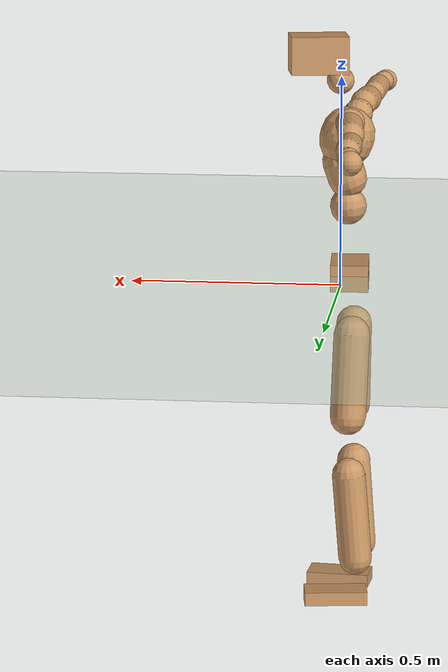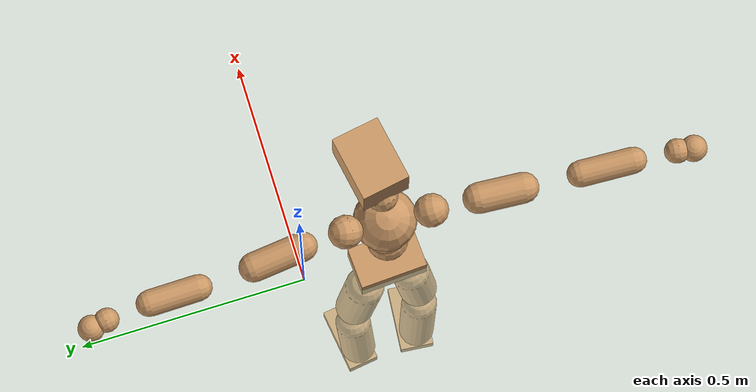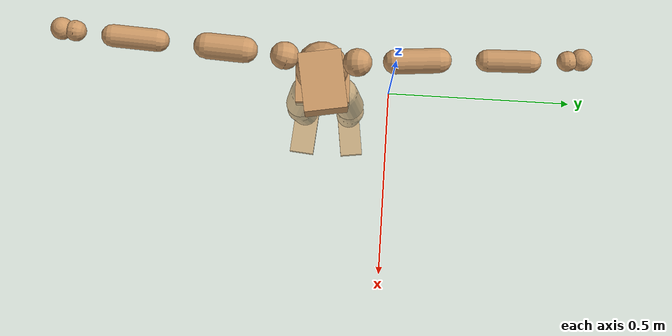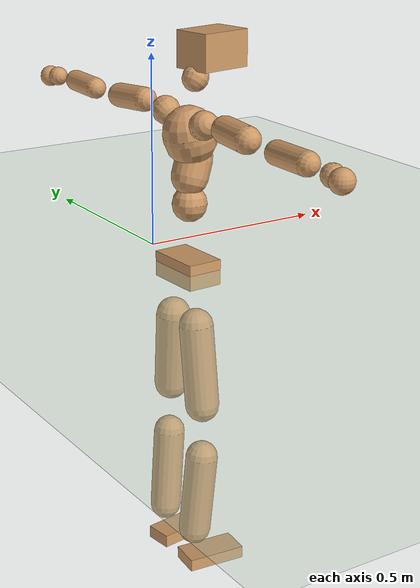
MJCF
<mujoco model="humanoid">
  <compiler coordinate="local" angle="radian"/>
  <default>
    <joint damping="0.0" armature="0.01" stiffness="0.0" limited="true"/>
    <geom conaffinity="1" condim="3" contype="7" margin="0.001" rgba="0.8 0.6 .4 1"/>
  </default>
  <asset>
    <texture type="skybox" builtin="gradient" rgb1=".4 .5 .6" rgb2="0 0 0" width="100" height="100"/>
    <texture builtin="flat" height="1278" mark="cross" markrgb="1 1 1" name="texgeom" random="0.01" rgb1="0.8 0.6 0.4" rgb2="0.8 0.6 0.4" type="cube" width="127"/>
    <texture builtin="checker" height="100" name="texplane" rgb1="0 0 0" rgb2="0.8 0.8 0.8" type="2d" width="100"/>
    <material name="MatPlane" reflectance="0.5" shininess="1" specular="1" texrepeat="60 60" texture="texplane"/>
    <material name="geom" texture="texgeom" texuniform="true"/>
  </asset>
  <worldbody>
    <light cutoff="100" diffuse="1 1 1" dir="-0 0 -1.3" directional="true" exponent="1" pos="0 0 1.3" specular=".1 .1 .1"/>
    <geom conaffinity="1" condim="3" name="floor" pos="0 0 0" rgba="0.8 0.9 0.8 1" size="100 100 .2" type="plane" material="MatPlane"/>
    <body name="Pelvis" pos="-0.0028 -0.1843 0.003">
      <freejoint name="Pelvis"/>
      <geom type="box" contype="1" conaffinity="1" density="5359.374919" pos="-0.0062 -0.0003 -0.0108" size="0.0461 0.0747 0.0325" quat="0.9997 0.0000 0.0000 0.0257" name="Pelvis"/>
      <body name="L_Hip" pos="-0.0182 0.0455 -0.0774">
        <joint name="L_Hip_x" type="hinge" pos="0 0 0" axis="1 0 0" stiffness="1600" damping="160" armature="0.02" range="-180.0000 180.0000"/>
        <joint name="L_Hip_y" type="hinge" pos="0 0 0" axis="0 1 0" stiffness="1600" damping="160" armature="0.02" range="-180.0000 180.0000"/>
        <joint name="L_Hip_z" type="hinge" pos="0 0 0" axis="0 0 1" stiffness="1600" damping="160" armature="0.02" range="-180.0000 180.0000"/>
        <geom type="capsule" contype="1" conaffinity="1" density="2040.816327" size="0.0439" fromto="0.0022 0.0081 -0.0734 0.0085 0.0305 -0.2768" name="L_Hip"/>
        <body name="L_Knee" pos="0.0107 0.0386 -0.3502">
          <joint name="L_Knee_x" type="hinge" pos="0 0 0" axis="1 0 0" stiffness="1600" damping="160" armature="0.02" range="-180.0000 180.0000"/>
          <joint name="L_Knee_y" type="hinge" pos="0 0 0" axis="0 1 0" stiffness="1600" damping="160" armature="0.02" range="-180.0000 180.0000"/>
          <joint name="L_Knee_z" type="hinge" pos="0 0 0" axis="0 0 1" stiffness="1600" damping="160" armature="0.02" range="-180.0000 180.0000"/>
          <geom type="capsule" contype="1" conaffinity="1" density="1234.567901" size="0.0408" fromto="-0.0056 -0.0022 -0.0705 -0.0225 -0.0089 -0.2852" name="L_Knee"/>
          <body name="L_Ankle" pos="-0.0281 -0.0111 -0.3558">
            <joint name="L_Ankle_x" type="hinge" pos="0 0 0" axis="1 0 0" stiffness="1600" damping="160" armature="0.02" range="-180.0000 180.0000"/>
            <joint name="L_Ankle_y" type="hinge" pos="0 0 0" axis="0 1 0" stiffness="1600" damping="160" armature="0.02" range="-180.0000 180.0000"/>
            <joint name="L_Ankle_z" type="hinge" pos="0 0 0" axis="0 0 1" stiffness="1600" damping="160" armature="0.02" range="-180.0000 180.0000"/>
            <geom type="box" contype="1" conaffinity="1" density="1000.000055" pos="0.0537 0.0075 -0.0244" size="0.0769 0.0363 0.0169" quat="0.9976 0.0000 0.0000 0.0690" name="L_Ankle"/>
            <body name="L_Toe" pos="0.1073 0.0149 -0.0489">
              <joint name="L_Toe_x" type="hinge" pos="0 0 0" axis="1 0 0" stiffness="1000" damping="100" armature="0.02" range="-180.0000 180.0000"/>
              <joint name="L_Toe_y" type="hinge" pos="0 0 0" axis="0 1 0" stiffness="1000" damping="100" armature="0.02" range="-180.0000 180.0000"/>
              <joint name="L_Toe_z" type="hinge" pos="0 0 0" axis="0 0 1" stiffness="1000" damping="100" armature="0.02" range="-180.0000 180.0000"/>
              <geom type="box" contype="1" conaffinity="1" density="9427889.263994" pos="0.0000 0.0000 0.0263" size="0.0007 0.0018 0.0009" quat="0.9971 0.0000 0.0000 0.0767" name="L_Toe"/>
            </body>
          </body>
        </body>
      </body>
      <body name="R_Hip" pos="-0.0154 -0.044 -0.0752">
        <joint name="R_Hip_x" type="hinge" pos="0 0 0" axis="1 0 0" stiffness="1600" damping="160" armature="0.02" range="-180.0000 180.0000"/>
        <joint name="R_Hip_y" type="hinge" pos="0 0 0" axis="0 1 0" stiffness="1600" damping="160" armature="0.02" range="-180.0000 180.0000"/>
        <joint name="R_Hip_z" type="hinge" pos="0 0 0" axis="0 0 1" stiffness="1600" damping="160" armature="0.02" range="-180.0000 180.0000"/>
        <geom type="capsule" contype="1" conaffinity="1" density="2040.816327" size="0.0434" fromto="0.0014 -0.0079 -0.0729 0.0056 -0.0309 -0.2858" name="R_Hip"/>
        <body name="R_Knee" pos="0.007 -0.0387 -0.3587">
          <joint name="R_Knee_x" type="hinge" pos="0 0 0" axis="1 0 0" stiffness="1600" damping="160" armature="0.02" range="-180.0000 180.0000"/>
          <joint name="R_Knee_y" type="hinge" pos="0 0 0" axis="0 1 0" stiffness="1600" damping="160" armature="0.02" range="-180.0000 180.0000"/>
          <joint name="R_Knee_z" type="hinge" pos="0 0 0" axis="0 0 1" stiffness="1600" damping="160" armature="0.02" range="-180.0000 180.0000"/>
          <geom type="capsule" contype="1" conaffinity="1" density="1234.567901" size="0.0414" fromto="-0.0054 0.0029 -0.0712 -0.0213 0.0117 -0.2824" name="R_Knee"/>
          <body name="R_Ankle" pos="-0.0266 0.0146 -0.3535">
            <joint name="R_Ankle_x" type="hinge" pos="0 0 0" axis="1 0 0" stiffness="1600" damping="160" armature="0.02" range="-180.0000 180.0000"/>
            <joint name="R_Ankle_y" type="hinge" pos="0 0 0" axis="0 1 0" stiffness="1600" damping="160" armature="0.02" range="-180.0000 180.0000"/>
            <joint name="R_Ankle_z" type="hinge" pos="0 0 0" axis="0 0 1" stiffness="1600" damping="160" armature="0.02" range="-180.0000 180.0000"/>
            <geom type="box" contype="1" conaffinity="1" density="1000.000046" pos="0.0541 -0.0049 -0.0191" size="0.0772 0.0398 0.016" quat="0.9990 0.0000 0.0000 -0.0450" name="R_Ankle"/>
            <body name="R_Toe" pos="0.1081 -0.0098 -0.0382">
              <joint name="R_Toe_x" type="hinge" pos="0 0 0" axis="1 0 0" stiffness="1000" damping="100" armature="0.02" range="-180.0000 180.0000"/>
              <joint name="R_Toe_y" type="hinge" pos="0 0 0" axis="0 1 0" stiffness="1000" damping="100" armature="0.02" range="-180.0000 180.0000"/>
              <joint name="R_Toe_z" type="hinge" pos="0 0 0" axis="0 0 1" stiffness="1000" damping="100" armature="0.02" range="-180.0000 180.0000"/>
              <geom type="box" contype="1" conaffinity="1" density="9263569.003968" pos="0.0000 0.0000 0.0216" size="0.0007 0.0019 0.0009" quat="0.9994 0.0000 0.0000 -0.0351" name="R_Toe"/>
            </body>
          </body>
        </body>
      </body>
      <body name="Torso" pos="-0.0035 -0.0035 0.0877">
        <joint name="Torso_x" type="hinge" pos="0 0 0" axis="1 0 0" stiffness="2000" damping="200" armature="0.02" range="-180.0000 180.0000"/>
        <joint name="Torso_y" type="hinge" pos="0 0 0" axis="0 1 0" stiffness="2000" damping="200" armature="0.02" range="-180.0000 180.0000"/>
        <joint name="Torso_z" type="hinge" pos="0 0 0" axis="0 0 1" stiffness="2000" damping="200" armature="0.02" range="-180.0000 180.0000"/>
        <geom type="capsule" contype="1" conaffinity="1" density="2040.816327" size="0.0443" fromto="0.0019 0.0023 0.0662 0.0020 0.0024 0.0682" name="Torso"/>
        <body name="Spine" pos="0.0039 0.0048 0.1344">
          <joint name="Spine_x" type="hinge" pos="0 0 0" axis="1 0 0" stiffness="2000" damping="200" armature="0.02" range="-180.0000 180.0000"/>
          <joint name="Spine_y" type="hinge" pos="0 0 0" axis="0 1 0" stiffness="2000" damping="200" armature="0.02" range="-180.0000 180.0000"/>
          <joint name="Spine_z" type="hinge" pos="0 0 0" axis="0 0 1" stiffness="2000" damping="200" armature="0.02" range="-180.0000 180.0000"/>
          <geom type="capsule" contype="1" conaffinity="1" density="2040.816327" size="0.0468" fromto="0.0148 0.0034 0.0443 0.0002 0.0000 0.0006" name="Spine"/>
          <body name="Chest" pos="0.015 0.0034 0.0449">
            <joint name="Chest_x" type="hinge" pos="0 0 0" axis="1 0 0" stiffness="2000" damping="200" armature="0.02" range="-180.0000 180.0000"/>
            <joint name="Chest_y" type="hinge" pos="0 0 0" axis="0 1 0" stiffness="2000" damping="200" armature="0.02" range="-180.0000 180.0000"/>
            <joint name="Chest_z" type="hinge" pos="0 0 0" axis="0 0 1" stiffness="2000" damping="200" armature="0.02" range="-180.0000 180.0000"/>
            <geom type="capsule" contype="1" conaffinity="1" density="2040.816327" size="0.0664" fromto="-0.0149 -0.0011 0.0647 -0.0116 -0.0008 0.0502" name="Chest"/>
            <body name="Neck" pos="-0.0223 -0.0031 0.1636">
              <joint name="Neck_x" type="hinge" pos="0 0 0" axis="1 0 0" stiffness="1000" damping="100" armature="0.02" range="-180.0000 180.0000"/>
              <joint name="Neck_y" type="hinge" pos="0 0 0" axis="0 1 0" stiffness="1000" damping="100" armature="0.02" range="-180.0000 180.0000"/>
              <joint name="Neck_z" type="hinge" pos="0 0 0" axis="0 0 1" stiffness="1000" damping="100" armature="0.02" range="-180.0000 180.0000"/>
              <geom type="capsule" contype="1" conaffinity="1" density="1000" size="0.0328" fromto="0.0252 0.0037 0.0309 0.0264 0.0039 0.0325" name="Neck"/>
              <body name="Head" pos="0.0516 0.0076 0.0634">
                <joint name="Head_x" type="hinge" pos="0 0 0" axis="1 0 0" stiffness="1000" damping="100" armature="0.02" range="-180.0000 180.0000"/>
                <joint name="Head_y" type="hinge" pos="0 0 0" axis="0 1 0" stiffness="1000" damping="100" armature="0.02" range="-180.0000 180.0000"/>
                <joint name="Head_z" type="hinge" pos="0 0 0" axis="0 0 1" stiffness="1000" damping="100" armature="0.02" range="-180.0000 180.0000"/>
                <geom type="box" contype="1" conaffinity="1" density="2250.000041" pos="0.0268 0.0048 0.0327" size="0.069 0.0508 0.0455" quat="0.9961 0.0000 0.0000 0.0884" name="Head"/>
              </body>
            </body>
            <body name="L_Thorax" pos="-0.0265 0.0549 0.0918">
              <joint name="L_Thorax_x" type="hinge" pos="0 0 0" axis="1 0 0" stiffness="1000" damping="100" armature="0.02" range="-180.0000 180.0000"/>
              <joint name="L_Thorax_y" type="hinge" pos="0 0 0" axis="0 1 0" stiffness="1000" damping="100" armature="0.02" range="-180.0000 180.0000"/>
              <joint name="L_Thorax_z" type="hinge" pos="0 0 0" axis="0 0 1" stiffness="1000" damping="100" armature="0.02" range="-180.0000 180.0000"/>
              <geom type="capsule" contype="1" conaffinity="1" density="1000" size="0.0355" fromto="0.0004 0.0320 0.0132 0.0004 0.0338 0.0140" name="L_Thorax"/>
              <body name="L_Shoulder" pos="0.0008 0.0658 0.0272">
                <joint name="L_Shoulder_x" type="hinge" pos="0 0 0" axis="1 0 0" stiffness="1000" damping="100" armature="0.02" range="-720.0000 720.0000"/>
                <joint name="L_Shoulder_y" type="hinge" pos="0 0 0" axis="0 1 0" stiffness="1000" damping="100" armature="0.02" range="-720.0000 720.0000"/>
                <joint name="L_Shoulder_z" type="hinge" pos="0 0 0" axis="0 0 1" stiffness="1000" damping="100" armature="0.02" range="-720.0000 720.0000"/>
                <geom type="capsule" contype="1" conaffinity="1" density="1000" size="0.0311" fromto="-0.0060 0.0607 -0.0036 -0.0165 0.1681 -0.0099" name="L_Shoulder"/>
                <body name="L_Elbow" pos="-0.0224 0.2288 -0.0135">
                  <joint name="L_Elbow_x" type="hinge" pos="0 0 0" axis="1 0 0" stiffness="1000" damping="100" armature="0.02" range="-720.0000 720.0000"/>
                  <joint name="L_Elbow_y" type="hinge" pos="0 0 0" axis="0 1 0" stiffness="1000" damping="100" armature="0.02" range="-720.0000 720.0000"/>
                  <joint name="L_Elbow_z" type="hinge" pos="0 0 0" axis="0 0 1" stiffness="1000" damping="100" armature="0.02" range="-720.0000 720.0000"/>
                  <geom type="capsule" contype="1" conaffinity="1" density="1000" size="0.0278" fromto="-0.0013 0.0578 0.0019 -0.0037 0.1634 0.0055" name="L_Elbow"/>
                  <body name="L_Wrist" pos="-0.005 0.2212 0.0074">
                    <joint name="L_Wrist_x" type="hinge" pos="0 0 0" axis="1 0 0" stiffness="600" damping="60" armature="0.02" range="-180.0000 180.0000"/>
                    <joint name="L_Wrist_y" type="hinge" pos="0 0 0" axis="0 1 0" stiffness="600" damping="60" armature="0.02" range="-180.0000 180.0000"/>
                    <joint name="L_Wrist_z" type="hinge" pos="0 0 0" axis="0 0 1" stiffness="600" damping="60" armature="0.02" range="-180.0000 180.0000"/>
                    <geom type="capsule" contype="1" conaffinity="1" density="1000" size="0.0253" fromto="-0.0060 0.0336 -0.0042 -0.0063 0.0356 -0.0044" name="L_Wrist"/>
                    <body name="L_Hand" pos="-0.0123 0.0692 -0.0086">
                      <joint name="L_Hand_x" type="hinge" pos="0 0 0" axis="1 0 0" stiffness="600" damping="60" armature="0.02" range="-180.0000 180.0000"/>
                      <joint name="L_Hand_y" type="hinge" pos="0 0 0" axis="0 1 0" stiffness="600" damping="60" armature="0.02" range="-180.0000 180.0000"/>
                      <joint name="L_Hand_z" type="hinge" pos="0 0 0" axis="0 0 1" stiffness="600" damping="60" armature="0.02" range="-180.0000 180.0000"/>
                      <geom type="sphere" contype="1" conaffinity="1" density="1000" size="0.0279" pos="0.0000 0.0000 0.0000" name="L_Hand"/>
                    </body>
                  </body>
                </body>
              </body>
            </body>
            <body name="R_Thorax" pos="-0.0306 -0.0575 0.0891">
              <joint name="R_Thorax_x" type="hinge" pos="0 0 0" axis="1 0 0" stiffness="1000" damping="100" armature="0.02" range="-180.0000 180.0000"/>
              <joint name="R_Thorax_y" type="hinge" pos="0 0 0" axis="0 1 0" stiffness="1000" damping="100" armature="0.02" range="-180.0000 180.0000"/>
              <joint name="R_Thorax_z" type="hinge" pos="0 0 0" axis="0 0 1" stiffness="1000" damping="100" armature="0.02" range="-180.0000 180.0000"/>
              <geom type="capsule" contype="1" conaffinity="1" density="1000" size="0.0353" fromto="-0.0028 -0.0352 0.0126 -0.0030 -0.0371 0.0133" name="R_Thorax"/>
              <body name="R_Shoulder" pos="-0.0058 -0.0723 0.0259">
                <joint name="R_Shoulder_x" type="hinge" pos="0 0 0" axis="1 0 0" stiffness="1000" damping="100" armature="0.02" range="-720.0000 720.0000"/>
                <joint name="R_Shoulder_y" type="hinge" pos="0 0 0" axis="0 1 0" stiffness="1000" damping="100" armature="0.02" range="-720.0000 720.0000"/>
                <joint name="R_Shoulder_z" type="hinge" pos="0 0 0" axis="0 0 1" stiffness="1000" damping="100" armature="0.02" range="-720.0000 720.0000"/>
                <geom type="capsule" contype="1" conaffinity="1" density="1000" size="0.0328" fromto="-0.0035 -0.0627 -0.0026 -0.0089 -0.1580 -0.0065" name="R_Shoulder"/>
                <body name="R_Elbow" pos="-0.0124 -0.2207 -0.009">
                  <joint name="R_Elbow_x" type="hinge" pos="0 0 0" axis="1 0 0" stiffness="1000" damping="100" armature="0.02" range="-720.0000 720.0000"/>
                  <joint name="R_Elbow_y" type="hinge" pos="0 0 0" axis="0 1 0" stiffness="1000" damping="100" armature="0.02" range="-720.0000 720.0000"/>
                  <joint name="R_Elbow_z" type="hinge" pos="0 0 0" axis="0 0 1" stiffness="1000" damping="100" armature="0.02" range="-720.0000 720.0000"/>
                  <geom type="capsule" contype="1" conaffinity="1" density="1000" size="0.0282" fromto="-0.0027 -0.0582 0.0007 -0.0079 -0.1712 0.0022" name="R_Elbow"/>
                  <body name="R_Wrist" pos="-0.0106 -0.2294 0.0029">
                    <joint name="R_Wrist_x" type="hinge" pos="0 0 0" axis="1 0 0" stiffness="600" damping="60" armature="0.02" range="-180.0000 180.0000"/>
                    <joint name="R_Wrist_y" type="hinge" pos="0 0 0" axis="0 1 0" stiffness="600" damping="60" armature="0.02" range="-180.0000 180.0000"/>
                    <joint name="R_Wrist_z" type="hinge" pos="0 0 0" axis="0 0 1" stiffness="600" damping="60" armature="0.02" range="-180.0000 180.0000"/>
                    <geom type="capsule" contype="1" conaffinity="1" density="1000" size="0.0262" fromto="-0.0043 -0.0340 -0.0030 -0.0045 -0.0360 -0.0032" name="R_Wrist"/>
                    <body name="R_Hand" pos="-0.0088 -0.07 -0.0062">
                      <joint name="R_Hand_x" type="hinge" pos="0 0 0" axis="1 0 0" stiffness="600" damping="60" armature="0.02" range="-180.0000 180.0000"/>
                      <joint name="R_Hand_y" type="hinge" pos="0 0 0" axis="0 1 0" stiffness="600" damping="60" armature="0.02" range="-180.0000 180.0000"/>
                      <joint name="R_Hand_z" type="hinge" pos="0 0 0" axis="0 0 1" stiffness="600" damping="60" armature="0.02" range="-180.0000 180.0000"/>
                      <geom type="sphere" contype="1" conaffinity="1" density="1000" size="0.0281" pos="0.0000 0.0000 0.0000" name="R_Hand"/>
                    </body>
                  </body>
                </body>
              </body>
            </body>
          </body>
        </body>
      </body>
    </body>
  </worldbody>
  <actuator>
    <motor name="L_Hip_x" joint="L_Hip_x" gear="500"/>
    <motor name="L_Hip_y" joint="L_Hip_y" gear="500"/>
    <motor name="L_Hip_z" joint="L_Hip_z" gear="500"/>
    <motor name="L_Knee_x" joint="L_Knee_x" gear="500"/>
    <motor name="L_Knee_y" joint="L_Knee_y" gear="500"/>
    <motor name="L_Knee_z" joint="L_Knee_z" gear="500"/>
    <motor name="L_Ankle_x" joint="L_Ankle_x" gear="500"/>
    <motor name="L_Ankle_y" joint="L_Ankle_y" gear="500"/>
    <motor name="L_Ankle_z" joint="L_Ankle_z" gear="500"/>
    <motor name="L_Toe_x" joint="L_Toe_x" gear="500"/>
    <motor name="L_Toe_y" joint="L_Toe_y" gear="500"/>
    <motor name="L_Toe_z" joint="L_Toe_z" gear="500"/>
    <motor name="R_Hip_x" joint="R_Hip_x" gear="500"/>
    <motor name="R_Hip_y" joint="R_Hip_y" gear="500"/>
    <motor name="R_Hip_z" joint="R_Hip_z" gear="500"/>
    <motor name="R_Knee_x" joint="R_Knee_x" gear="500"/>
    <motor name="R_Knee_y" joint="R_Knee_y" gear="500"/>
    <motor name="R_Knee_z" joint="R_Knee_z" gear="500"/>
    <motor name="R_Ankle_x" joint="R_Ankle_x" gear="500"/>
    <motor name="R_Ankle_y" joint="R_Ankle_y" gear="500"/>
    <motor name="R_Ankle_z" joint="R_Ankle_z" gear="500"/>
    <motor name="R_Toe_x" joint="R_Toe_x" gear="500"/>
    <motor name="R_Toe_y" joint="R_Toe_y" gear="500"/>
    <motor name="R_Toe_z" joint="R_Toe_z" gear="500"/>
    <motor name="Torso_x" joint="Torso_x" gear="500"/>
    <motor name="Torso_y" joint="Torso_y" gear="500"/>
    <motor name="Torso_z" joint="Torso_z" gear="500"/>
    <motor name="Spine_x" joint="Spine_x" gear="500"/>
    <motor name="Spine_y" joint="Spine_y" gear="500"/>
    <motor name="Spine_z" joint="Spine_z" gear="500"/>
    <motor name="Chest_x" joint="Chest_x" gear="500"/>
    <motor name="Chest_y" joint="Chest_y" gear="500"/>
    <motor name="Chest_z" joint="Chest_z" gear="500"/>
    <motor name="Neck_x" joint="Neck_x" gear="500"/>
    <motor name="Neck_y" joint="Neck_y" gear="500"/>
    <motor name="Neck_z" joint="Neck_z" gear="500"/>
    <motor name="Head_x" joint="Head_x" gear="500"/>
    <motor name="Head_y" joint="Head_y" gear="500"/>
    <motor name="Head_z" joint="Head_z" gear="500"/>
    <motor name="L_Thorax_x" joint="L_Thorax_x" gear="500"/>
    <motor name="L_Thorax_y" joint="L_Thorax_y" gear="500"/>
    <motor name="L_Thorax_z" joint="L_Thorax_z" gear="500"/>
    <motor name="L_Shoulder_x" joint="L_Shoulder_x" gear="500"/>
    <motor name="L_Shoulder_y" joint="L_Shoulder_y" gear="500"/>
    <motor name="L_Shoulder_z" joint="L_Shoulder_z" gear="500"/>
    <motor name="L_Elbow_x" joint="L_Elbow_x" gear="500"/>
    <motor name="L_Elbow_y" joint="L_Elbow_y" gear="500"/>
    <motor name="L_Elbow_z" joint="L_Elbow_z" gear="500"/>
    <motor name="L_Wrist_x" joint="L_Wrist_x" gear="500"/>
    <motor name="L_Wrist_y" joint="L_Wrist_y" gear="500"/>
    <motor name="L_Wrist_z" joint="L_Wrist_z" gear="500"/>
    <motor name="L_Hand_x" joint="L_Hand_x" gear="500"/>
    <motor name="L_Hand_y" joint="L_Hand_y" gear="500"/>
    <motor name="L_Hand_z" joint="L_Hand_z" gear="500"/>
    <motor name="R_Thorax_x" joint="R_Thorax_x" gear="500"/>
    <motor name="R_Thorax_y" joint="R_Thorax_y" gear="500"/>
    <motor name="R_Thorax_z" joint="R_Thorax_z" gear="500"/>
    <motor name="R_Shoulder_x" joint="R_Shoulder_x" gear="500"/>
    <motor name="R_Shoulder_y" joint="R_Shoulder_y" gear="500"/>
    <motor name="R_Shoulder_z" joint="R_Shoulder_z" gear="500"/>
    <motor name="R_Elbow_x" joint="R_Elbow_x" gear="500"/>
    <motor name="R_Elbow_y" joint="R_Elbow_y" gear="500"/>
    <motor name="R_Elbow_z" joint="R_Elbow_z" gear="500"/>
    <motor name="R_Wrist_x" joint="R_Wrist_x" gear="500"/>
    <motor name="R_Wrist_y" joint="R_Wrist_y" gear="500"/>
    <motor name="R_Wrist_z" joint="R_Wrist_z" gear="500"/>
    <motor name="R_Hand_x" joint="R_Hand_x" gear="500"/>
    <motor name="R_Hand_y" joint="R_Hand_y" gear="500"/>
    <motor name="R_Hand_z" joint="R_Hand_z" gear="500"/>
  </actuator>
  <contact>
    <exclude body1="Torso" body2="Chest"/>
    <exclude body1="Head" body2="Chest"/>
    <exclude body1="R_Knee" body2="R_Toe"/>
    <exclude body1="R_Knee" body2="L_Ankle"/>
    <exclude body1="R_Knee" body2="L_Toe"/>
    <exclude body1="L_Knee" body2="L_Toe"/>
    <exclude body1="L_Knee" body2="R_Ankle"/>
    <exclude body1="L_Knee" body2="R_Toe"/>
    <exclude body1="L_Shoulder" body2="Chest"/>
    <exclude body1="R_Shoulder" body2="Chest"/>
  </contact>
  <sensor/>
  <size njmax="700" nconmax="700"/>
</mujoco>
